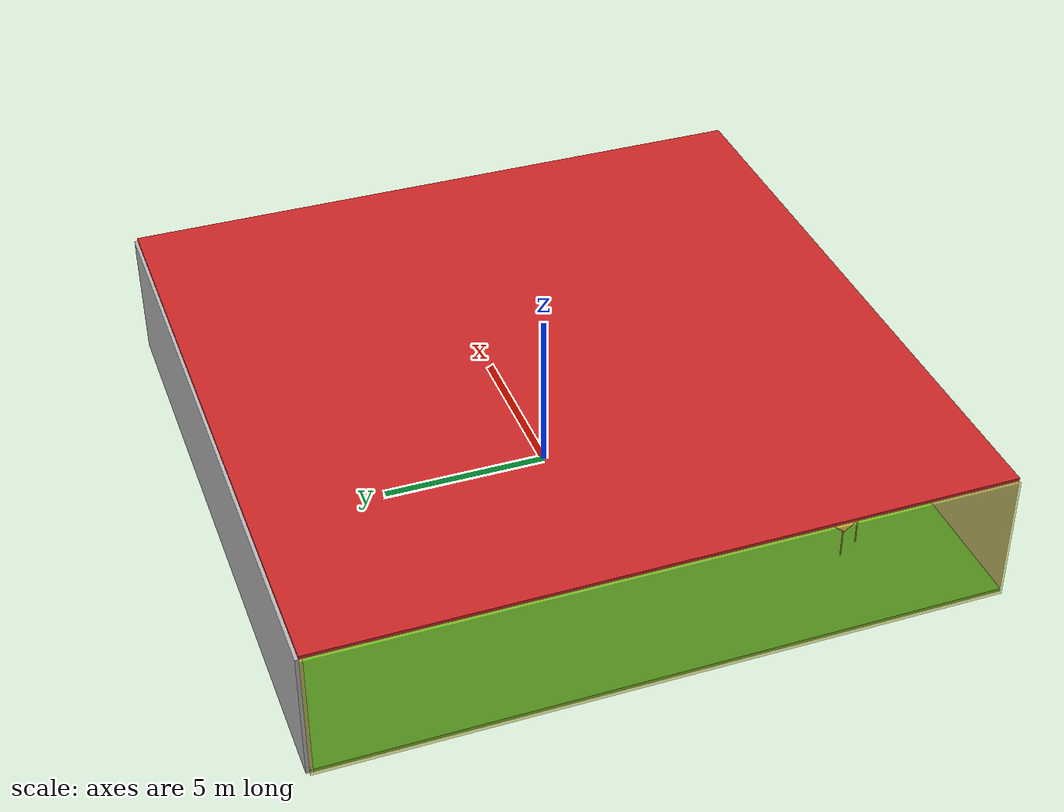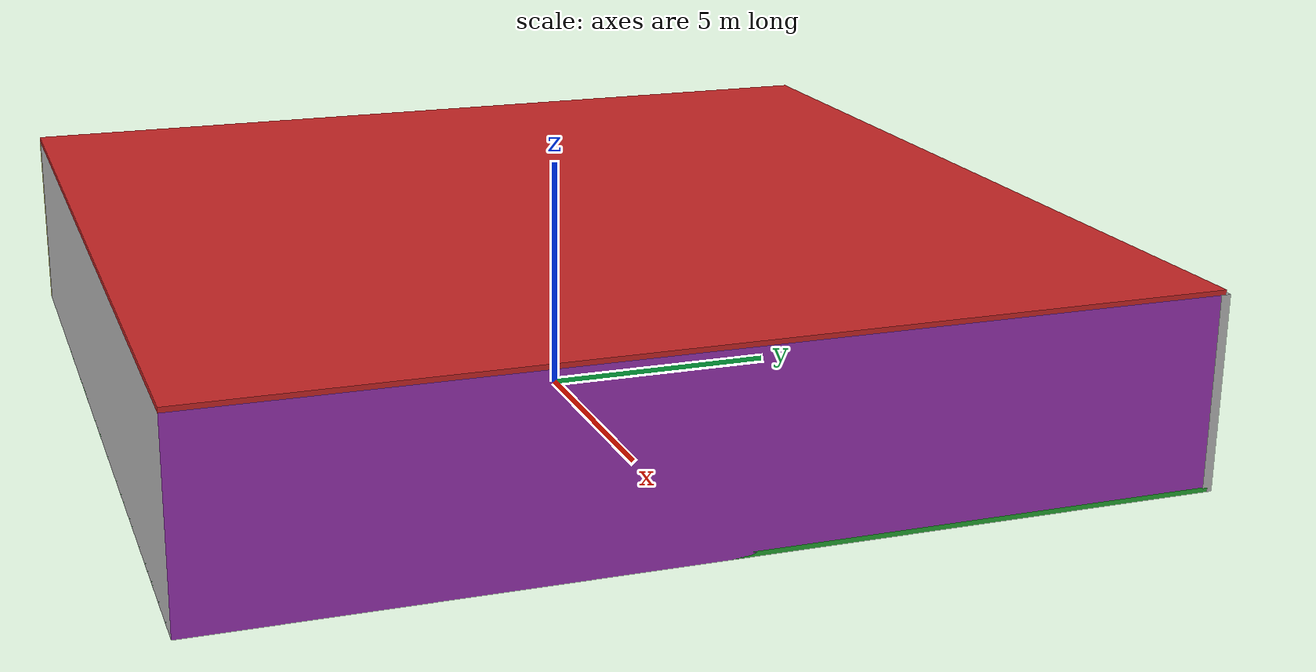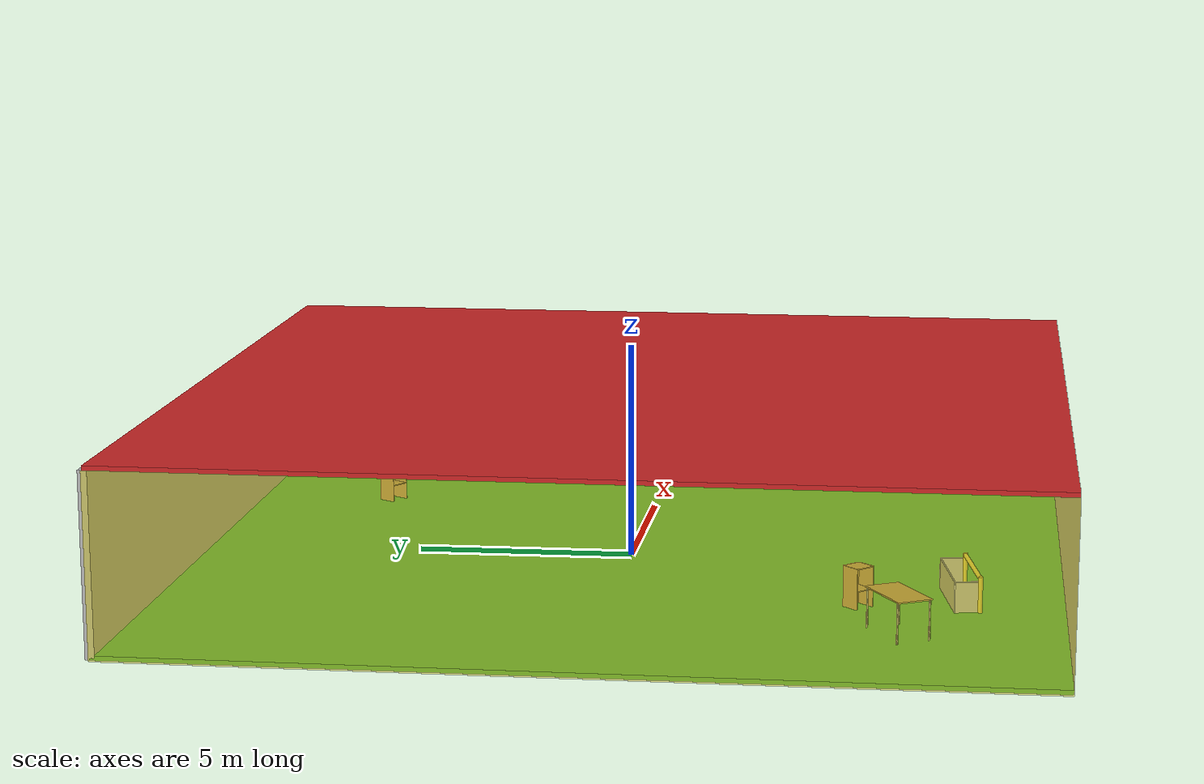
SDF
<sdf version="1.4">
 <world name="default">
  <physics type="ode">
   <max_step_size>0.001</max_step_size>
   <real_time_factor>1</real_time_factor>
   <real_time_update_rate>1000</real_time_update_rate>
   <gravity>0 0 -9.8</gravity>
  </physics>
  <scene><ambient>0.4 0.4 0.4 1</ambient><background>0.7 0.7 0.7 1</background><shadows>1</shadows></scene>
  <model name="Surrounding">
   <static>1</static>
   <link name="Ceiling">
    <collision name="Ceiling_Collision"><geometry><box><size>20 20 0.1</size></box></geometry></collision>
    <visual name="Ceiling_Visual">
     <geometry><box><size>20 20 0.1</size></box></geometry>
     <material>
      <script><uri>file://media/materials/scripts/gazebo.material</uri><name>Gazebo/RedGlow</name></script>
     </material>
    </visual>
    <pose>0 0 4.05 0 0 0</pose>
   </link>
   <link name="Wall_South">
    <collision name="Wall_South_Collision">
     <geometry><box><size>20 0 4</size></box></geometry>
     <pose>0 0 2 0 -0 0</pose>
    </collision>
    <visual name="Wall_South_Visual">
     <pose>0 0 2 0 -0 0</pose>
     <geometry><box><size>20 0 4</size></box></geometry>
     <material>
      <script><uri>file://media/materials/scripts/gazebo.material</uri><name>Gazebo/JointAnchor</name></script>
     </material>
    </visual>
    <velocity_decay><linear>0</linear><angular>0</angular></velocity_decay>
    <pose>0 -10 0 0 -0 0</pose>
   </link>
   <link name="Wall_East">
    <collision name="Wall_21_Collision">
     <geometry><box><size>20 0 4</size></box></geometry>
     <pose>0 0 2 0 -0 0</pose>
    </collision>
    <visual name="Wall_21_Visual">
     <pose>0 0 2 0 -0 0</pose>
     <geometry><box><size>20 0 4</size></box></geometry>
     <material>
      <script><uri>file://media/materials/scripts/gazebo.material</uri><name>Gazebo/PurpleGlow</name></script>
     </material>
    </visual>
    <velocity_decay><linear>0</linear><angular>0</angular></velocity_decay>
    <pose>10 0 0 0 -0 1.5708</pose>
   </link>
   <link name="Wall_North">
    <collision name="Wall_22_Collision">
     <geometry><box><size>20 0.2 4</size></box></geometry>
     <pose>0 0 2 0 -0 0</pose>
    </collision>
    <visual name="Wall_22_Visual">
     <pose>0 0 2 0 -0 0</pose>
     <geometry><box><size>20 0.2 4</size></box></geometry>
     <material>
      <script><uri>file://media/materials/scripts/gazebo.material</uri><name>Gazebo/JointAnchor</name></script>
     </material>
    </visual>
    <velocity_decay><linear>0</linear><angular>0</angular></velocity_decay>
    <pose>0 10 0 0 -0 0</pose>
   </link>
   <link name="Wall_West">
    <collision name="Wall_23_Collision">
     <geometry><box><size>20 0.2 4</size></box></geometry>
     <pose>0 0 2 0 -0 0</pose>
    </collision>
    <visual name="Wall_23_Visual">
     <pose>0 0 2 0 -0 0</pose>
     <geometry><box><size>20 0.2 4</size></box></geometry>
     <material>
      <script>
       <uri>file://media/materials/scripts/gazebo.material</uri>
       <name>Gazebo/YellowTransparent</name>
      </script>
     </material>
    </visual>
    <velocity_decay><linear>0</linear><angular>0</angular></velocity_decay>
    <pose>-10 0 0 0 0 -1.5708</pose>
   </link>
   <link name="Ground_link">
    <collision name="collision">
     <pose>0 0 .05 0 -0 0</pose>
     <geometry><box><size>20 20 0.1</size></box></geometry>
    </collision>
    <visual name="visual">
     <pose>0 0 .05 0 -0 0</pose>
     <geometry><box><size>20 20 0.1</size></box></geometry>
     <material>
      <script><uri>file://media/materials/scripts/gazebo.material</uri><name>Gazebo/GreenGlow</name></script>
     </material>
    </visual>
   </link>
   <static>1</static>
  </model>
  <spherical_coordinates>
   <surface_model>EARTH_WGS84</surface_model>
   <latitude_deg>0</latitude_deg>
   <longitude_deg>0</longitude_deg>
   <elevation>0</elevation>
   <heading_deg>0</heading_deg>
  </spherical_coordinates>
  <light name="lightball_0" type="diffuse">
   <diffuse>0.8 0.8 0.8 1</diffuse>
   <specular>0.2 0.2 0.2 1</specular>
   <attenuation>
    <range>100</range>
    <constant>0.7</constant>
    <linear>0.01</linear>
    <quadratic>0.001</quadratic>
   </attenuation>
   <direction>-0.5 0.1 -0.9</direction>
   <pose>4.12349644063 -1.48901346018 2.23227485151 0 0 0</pose>
  </light>
  <light name="lightball_1" type="diffuse">
   <diffuse>0.8 0.8 0.8 1</diffuse>
   <specular>0.2 0.2 0.2 1</specular>
   <attenuation>
    <range>100</range>
    <constant>0.7</constant>
    <linear>0.01</linear>
    <quadratic>0.001</quadratic>
   </attenuation>
   <direction>-0.5 0.1 -0.9</direction>
   <pose>-6.62746367294 -6.45915966545 1.43898137393 0 0 0</pose>
  </light>
  <light name="lightball_2" type="diffuse">
   <diffuse>0.8 0.8 0.8 1</diffuse>
   <specular>0.2 0.2 0.2 1</specular>
   <attenuation>
    <range>100</range>
    <constant>0.7</constant>
    <linear>0.01</linear>
    <quadratic>0.001</quadratic>
   </attenuation>
   <direction>-0.5 0.1 -0.9</direction>
   <pose>0.161327013228 7.50024412382 2.04816734582 0 0 0</pose>
  </light>
  <light name="lightball_3" type="diffuse">
   <diffuse>0.8 0.8 0.8 1</diffuse>
   <specular>0.2 0.2 0.2 1</specular>
   <attenuation>
    <range>100</range>
    <constant>0.7</constant>
    <linear>0.01</linear>
    <quadratic>0.001</quadratic>
   </attenuation>
   <direction>-0.5 0.1 -0.9</direction>
   <pose>7.91898670095 9.94495706882 2.38555528488 0 0 0</pose>
  </light>
  <light name="lightball_4" type="diffuse">
   <diffuse>0.8 0.8 0.8 1</diffuse>
   <specular>0.2 0.2 0.2 1</specular>
   <attenuation>
    <range>100</range>
    <constant>0.7</constant>
    <linear>0.01</linear>
    <quadratic>0.001</quadratic>
   </attenuation>
   <direction>-0.5 0.1 -0.9</direction>
   <pose>7.16957071382 -6.62484972307 2.33309986266 0 0 0</pose>
  </light>
  <light name="lightball_5" type="diffuse">
   <diffuse>0.8 0.8 0.8 1</diffuse>
   <specular>0.2 0.2 0.2 1</specular>
   <attenuation>
    <range>100</range>
    <constant>0.7</constant>
    <linear>0.01</linear>
    <quadratic>0.001</quadratic>
   </attenuation>
   <direction>-0.5 0.1 -0.9</direction>
   <pose>4.16780502559 -1.63360359235 3.29468611552 0 0 0</pose>
  </light>
  <light name="lightball_6" type="diffuse">
   <diffuse>0.8 0.8 0.8 1</diffuse>
   <specular>0.2 0.2 0.2 1</specular>
   <attenuation>
    <range>100</range>
    <constant>0.7</constant>
    <linear>0.01</linear>
    <quadratic>0.001</quadratic>
   </attenuation>
   <direction>-0.5 0.1 -0.9</direction>
   <pose>7.8806517412 2.59546342572 3.02993877703 0 0 0</pose>
  </light>
  <light name="lightball_7" type="diffuse">
   <diffuse>0.8 0.8 0.8 1</diffuse>
   <specular>0.2 0.2 0.2 1</specular>
   <attenuation>
    <range>100</range>
    <constant>0.7</constant>
    <linear>0.01</linear>
    <quadratic>0.001</quadratic>
   </attenuation>
   <direction>-0.5 0.1 -0.9</direction>
   <pose>-7.64982747978 -6.95393138253 0.677363832108 0 0 0</pose>
  </light>
  <light name="lightball_8" type="diffuse">
   <diffuse>0.8 0.8 0.8 1</diffuse>
   <specular>0.2 0.2 0.2 1</specular>
   <attenuation>
    <range>100</range>
    <constant>0.7</constant>
    <linear>0.01</linear>
    <quadratic>0.001</quadratic>
   </attenuation>
   <direction>-0.5 0.1 -0.9</direction>
   <pose>3.94828566372 5.74071381218 1.03258958059 0 0 0</pose>
  </light>
  <light name="lightball_9" type="diffuse">
   <diffuse>0.8 0.8 0.8 1</diffuse>
   <specular>0.2 0.2 0.2 1</specular>
   <attenuation>
    <range>100</range>
    <constant>0.7</constant>
    <linear>0.01</linear>
    <quadratic>0.001</quadratic>
   </attenuation>
   <direction>-0.5 0.1 -0.9</direction>
   <pose>-4.30580296194 4.1963812835 1.85672336613 0 0 0</pose>
  </light>
  <light name="lightball_10" type="diffuse">
   <diffuse>0.8 0.8 0.8 1</diffuse>
   <specular>0.2 0.2 0.2 1</specular>
   <attenuation>
    <range>100</range>
    <constant>0.7</constant>
    <linear>0.01</linear>
    <quadratic>0.001</quadratic>
   </attenuation>
   <direction>-0.5 0.1 -0.9</direction>
   <pose>-0.440942541238 -3.89350987336 3.30540826476 0 0 0</pose>
  </light>
  <light name="lightball_11" type="diffuse">
   <diffuse>0.8 0.8 0.8 1</diffuse>
   <specular>0.2 0.2 0.2 1</specular>
   <attenuation>
    <range>100</range>
    <constant>0.7</constant>
    <linear>0.01</linear>
    <quadratic>0.001</quadratic>
   </attenuation>
   <direction>-0.5 0.1 -0.9</direction>
   <pose>0.584099472452 -2.89066271989 0.904427277657 0 0 0</pose>
  </light>
  <light name="lightball_12" type="diffuse">
   <diffuse>0.8 0.8 0.8 1</diffuse>
   <specular>0.2 0.2 0.2 1</specular>
   <attenuation>
    <range>100</range>
    <constant>0.7</constant>
    <linear>0.01</linear>
    <quadratic>0.001</quadratic>
   </attenuation>
   <direction>-0.5 0.1 -0.9</direction>
   <pose>2.33468911833 -7.76990320904 2.61398428949 0 0 0</pose>
  </light>
  <light name="lightball_13" type="diffuse">
   <diffuse>0.8 0.8 0.8 1</diffuse>
   <specular>0.2 0.2 0.2 1</specular>
   <attenuation>
    <range>100</range>
    <constant>0.7</constant>
    <linear>0.01</linear>
    <quadratic>0.001</quadratic>
   </attenuation>
   <direction>-0.5 0.1 -0.9</direction>
   <pose>-7.83212623371 -2.31620104537 0.908917076956 0 0 0</pose>
  </light>
  <include><uri>model://table</uri><pose>-6.38381237124 -6.42517689538 0 0 0 0.516760575714</pose></include>
  <include>
   <uri>model://robocup_3Dsim_goal</uri>
   <pose>-3.4295094449 -7.96947484211 0 0 0 1.7337002659</pose>
  </include>
  <include><uri>model://cabinet</uri><pose>-4.28444737549 -5.49605689327 0 0 0 0.790046994938</pose></include>
  <include><uri>model://cabinet</uri><pose>4.58572471009 6.60546009519 0 0 0 1.00645723177</pose></include>
 </world>
</sdf>

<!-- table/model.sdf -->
<sdf version="1.5">
  <model name="table">
    <static>true</static>
    <link name="link">
      <collision name="surface">
        <pose>0 0 1.0 0 0 0</pose>
        <geometry>
          <box>
            <size>1.5 0.8 0.03</size>
          </box>
        </geometry>
        <surface>
          <friction>
            <ode>
              <mu>0.6</mu>
              <mu2>0.6</mu2>
            </ode>
          </friction>
        </surface>
      </collision>
      <visual name="visual1">
        <pose>0 0 1.0 0 0 0</pose>
        <geometry>
          <box>
            <size>1.5 0.8 0.03</size>
          </box>
        </geometry>
        <material>
          <script>
            <uri>model://media/materials/scripts/gazebo.material</uri>
            <name>Gazebo/Wood</name>
          </script>
        </material>
      </visual>
      <collision name="front_left_leg">
        <pose>0.68 0.38 0.5 0 0 0</pose>
        <geometry>
          <cylinder>
            <radius>0.02</radius>
            <length>1.0</length>
          </cylinder>
        </geometry>
      </collision>
      <visual name="front_left_leg">
        <pose>0.68 0.38 0.5 0 0 0</pose>
        <geometry>
          <cylinder>
            <radius>0.02</radius>
            <length>1.0</length>
          </cylinder>
        </geometry>
        <material>
          <script>
            <uri>model://media/materials/scripts/gazebo.material</uri>
            <name>Gazebo/Grey</name>
          </script>
        </material>
      </visual>
      <collision name="front_right_leg">
        <pose>0.68 -0.38 0.5 0 0 0</pose>
        <geometry>
          <cylinder>
            <radius>0.02</radius>
            <length>1.0</length>
          </cylinder>
        </geometry>
      </collision>
      <visual name="front_right_leg">
        <pose>0.68 -0.38 0.5 0 0 0</pose>
        <geometry>
          <cylinder>
            <radius>0.02</radius>
            <length>1.0</length>
          </cylinder>
        </geometry>
        <material>
          <script>
            <uri>model://media/materials/scripts/gazebo.material</uri>
            <name>Gazebo/Grey</name>
          </script>
        </material>
      </visual>
      <collision name="back_right_leg">
        <pose>-0.68 -0.38 0.5 0 0 0</pose>
        <geometry>
          <cylinder>
            <radius>0.02</radius>
            <length>1.0</length>
          </cylinder>
        </geometry>
      </collision>
      <visual name="back_right_leg">
        <pose>-0.68 -0.38 0.5 0 0 0</pose>
        <geometry>
          <cylinder>
            <radius>0.02</radius>
            <length>1.0</length>
          </cylinder>
        </geometry>
        <material>
          <script>
            <uri>model://media/materials/scripts/gazebo.material</uri>
            <name>Gazebo/Grey</name>
          </script>
        </material>
      </visual>
      <collision name="back_left_leg">
        <pose>-0.68 0.38 0.5 0 0 0</pose>
        <geometry>
          <cylinder>
            <radius>0.02</radius>
            <length>1.0</length>
          </cylinder>
        </geometry>
      </collision>
      <visual name="back_left_leg">
        <pose>-0.68 0.38 0.5 0 0 0</pose>
        <geometry>
          <cylinder>
            <radius>0.02</radius>
            <length>1.0</length>
          </cylinder>
        </geometry>
        <material>
          <script>
            <uri>model://media/materials/scripts/gazebo.material</uri>
            <name>Gazebo/Grey</name>
          </script>
        </material>
      </visual>
    </link>
  </model>
</sdf>

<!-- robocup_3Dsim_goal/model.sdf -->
<sdf version="1.5">
  <model name="robocup_3d_goal">
    <static>true</static>
    <link name="left_post">
      <pose>0 1.05 0.45 0 0 0</pose>
      <collision name="collision">
        <geometry>
          <cylinder>
            <radius>0.05</radius>
            <length>0.9</length>
          </cylinder>
        </geometry>
      </collision>
      <visual name="visual">
        <geometry>
          <cylinder>
            <radius>0.05</radius>
            <length>0.9</length>
          </cylinder>
        </geometry>
        <material>
          <script>
            <uri>file://media/materials/scripts/gazebo.material</uri>
            <name>Gazebo/ZincYellow</name>
          </script>
        </material>
      </visual>
    </link>
    <link name="left_support_horiz_lower">
      <pose>0.30 1.05 0.01 0 0 0</pose>
      <collision name="collision">
        <geometry>
          <box>
            <size>0.50 0.02 0.02</size>
          </box>
        </geometry>
      </collision>
      <visual name="visual">
        <geometry>
          <box>
            <size>0.50 0.02 0.02</size>
          </box>
        </geometry>
        <material>
          <script>
            <uri>file://media/materials/scripts/gazebo.material</uri>
            <name>Gazebo/White</name>
          </script>
        </material>
      </visual>
    </link>
    <link name="left_support_horiz_upper">
      <pose>0.30 1.05 0.79 0 0 0</pose>
      <collision name="collision">
        <geometry>
          <box>
            <size>0.50 0.02 0.02</size>
          </box>
        </geometry>
      </collision>
      <visual name="visual">
        <geometry>
          <box>
            <size>0.50 0.02 0.02</size>
          </box>
        </geometry>
        <material>
          <script>
            <uri>file://media/materials/scripts/gazebo.material</uri>
            <name>Gazebo/White</name>
          </script>
        </material>
      </visual>
    </link>
    <link name="left_support_vertical">
      <pose>0.56 1.05 0.4 0 1.5708 0</pose>
      <collision name="collision">
        <geometry>
          <box>
            <size>0.80 0.02 0.02</size>
          </box>
        </geometry>
      </collision>
      <visual name="visual">
        <geometry>
          <box>
            <size>0.80 0.02 0.02</size>
          </box>
        </geometry>
        <material>
          <script>
            <uri>file://media/materials/scripts/gazebo.material</uri>
            <name>Gazebo/White</name>
          </script>
        </material>
      </visual>
    </link>
    <link name="right_support_horiz_lower">
      <pose>0.30 -1.05 0.01 0 0 0</pose>
      <collision name="collision">
        <geometry>
          <box>
            <size>0.50 0.02 0.02</size>
          </box>
        </geometry>
      </collision>
      <visual name="visual">
        <geometry>
          <box>
            <size>0.50 0.02 0.02</size>
          </box>
        </geometry>
        <material>
          <script>
            <uri>file://media/materials/scripts/gazebo.material</uri>
            <name>Gazebo/White</name>
          </script>
        </material>
      </visual>
    </link>
    <link name="right_support_horiz_upper">
      <pose>0.30 -1.05 0.79 0 0 0</pose>
      <collision name="collision">
        <geometry>
          <box>
            <size>0.50 0.02 0.02</size>
          </box>
        </geometry>
      </collision>
      <visual name="visual">
        <geometry>
          <box>
            <size>0.50 0.02 0.02</size>
          </box>
        </geometry>
        <material>
          <script>
            <uri>file://media/materials/scripts/gazebo.material</uri>
            <name>Gazebo/White</name>
          </script>
        </material>
      </visual>
    </link>
    <link name="right_support_vertical">
      <pose>0.56 -1.05 0.4 0 1.5708 0</pose>
      <collision name="collision">
        <geometry>
          <box>
            <size>0.80 0.02 0.02</size>
          </box>
        </geometry>
      </collision>
      <visual name="visual">
        <geometry>
          <box>
            <size>0.80 0.02 0.02</size>
          </box>
        </geometry>
        <material>
          <script>
            <uri>file://media/materials/scripts/gazebo.material</uri>
            <name>Gazebo/White</name>
          </script>
        </material>
      </visual>
    </link>
    <link name="center_support_horiz_lower">
      <pose>0.56 0 0.01 0 1.5708 0</pose>
      <collision name="collision">
        <geometry>
          <box>
            <size>0.02 2.08 0.02</size>
          </box>
        </geometry>
      </collision>
      <visual name="visual">
        <geometry>
          <box>
            <size>0.02 2.08 0.02</size>
          </box>
        </geometry>
        <material>
          <script>
            <uri>file://media/materials/scripts/gazebo.material</uri>
            <name>Gazebo/White</name>
          </script>
        </material>
      </visual>
    </link>
    <link name="center_support_horiz_upper">
      <pose>0.56 0 0.79 0 1.5708 0</pose>
      <collision name="collision">
        <geometry>
          <box>
            <size>0.02 2.08 0.02</size>
          </box>
        </geometry>
      </collision>
      <visual name="visual">
        <geometry>
          <box>
            <size>0.02 2.08 0.02</size>
          </box>
        </geometry>
        <material>
          <script>
            <uri>file://media/materials/scripts/gazebo.material</uri>
            <name>Gazebo/White</name>
          </script>
        </material>
      </visual>
    </link>
    <link name="right_post">
      <pose>0 -1.05 0.45 0 0 0</pose>
      <collision name="collision">
        <geometry>
          <cylinder>
            <radius>0.05</radius>
            <length>0.9</length>
          </cylinder>
        </geometry>
      </collision>
      <visual name="visual">
        <geometry>
          <cylinder>
            <radius>0.05</radius>
            <length>0.9</length>
          </cylinder>
        </geometry>
        <material>
          <script>
            <uri>file://media/materials/scripts/gazebo.material</uri>
            <name>Gazebo/ZincYellow</name>
          </script>
        </material>
      </visual>
    </link>
    <link name="crossbar">
      <pose>0 0 0.85 1.57 1.57 0</pose>
      <collision name="collision">
        <geometry>
          <cylinder>
            <radius>0.05</radius>
            <length>2.0</length>
          </cylinder>
        </geometry>
      </collision>
      <visual name="visual">
        <geometry>
          <cylinder>
            <radius>0.05</radius>
            <length>2.0</length>
          </cylinder>
        </geometry>
        <material>
          <script>
            <uri>file://media/materials/scripts/gazebo.material</uri>
            <name>Gazebo/ZincYellow</name>
          </script>
        </material>
      </visual>
    </link>
    <link name="center_net">
      <pose>0.56 0 0.40 0 0 0</pose>
      <collision name="collision">
        <geometry>
          <box>
            <size>0.01 2.1 0.80</size>
          </box>
        </geometry>
      </collision>
      <visual name="visual">
        <geometry>
          <box>
            <size>0.01 2.1 0.80</size>
          </box>
        </geometry>
        <material>
          <script>
            <uri>model://../model_source/models/robocup09_spl_field/materials/scripts/</uri>
            <uri>model://../model_source/models/robocup09_spl_field/materials/textures/</uri>
            <name>RoboCup/Net</name>
          </script>
        </material>
      </visual>
    </link>
    <link name="left_net">
      <pose>0.30 1.05 0.40 0 0 0</pose>
      <collision name="collision">
        <geometry>
          <box>
            <size>0.50 0.01 0.76</size>
          </box>
        </geometry>
      </collision>
      <visual name="visual">
        <geometry>
          <box>
            <size>0.50 0.01 0.76</size>
          </box>
        </geometry>
        <material>
          <script>
            <uri>model://../model_source/models/robocup09_spl_field/materials/scripts/</uri>
            <uri>model://../model_source/models/robocup09_spl_field/materials/textures/</uri>
            <name>RoboCup/Net</name>
          </script>
        </material>
      </visual>
    </link>
    <link name="right_net">
      <pose>0.30 -1.05 0.40 0 0 0</pose>
      <collision name="collision">
        <geometry>
          <box>
            <size>0.50 0.01 0.76</size>
          </box>
        </geometry>
      </collision>
      <visual name="visual">
        <geometry>
          <box>
            <size>0.50 0.01 0.76</size>
          </box>
        </geometry>
        <material>
          <script>
            <uri>model://../model_source/models/robocup09_spl_field/materials/scripts/</uri>
            <uri>model://../model_source/models/robocup09_spl_field/materials/textures/</uri>
            <name>RoboCup/Net</name>
          </script>
        </material>
      </visual>
    </link>
  </model>
</sdf>

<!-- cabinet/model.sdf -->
<sdf version="1.5">
  <model name="cabinet">
    <static>true</static>
    <link name="cabinet_bottom_plate">
      <inertial>
        <pose>0 0 -1 0 0 0</pose>
        <inertia>
          <ixx>2.050000</ixx>
          <ixy>0</ixy>
          <ixz>0</ixz>
          <iyy>2.050000</iyy>
          <iyz>0</iyz>
          <izz>2.050000</izz>
        </inertia>
        <mass>25.000000</mass>
      </inertial>
      <collision name="cabinet_bottom_plate_geom">
        <pose>0 0 0.010000 0 0 0</pose>
        <geometry>
          <box>
            <size>0.450000 0.450000 0.020000</size>
          </box>
        </geometry>
      </collision>
      <visual name="cabinet_bottom_plate_geom_visual">
        <pose>0 0 0.010000 0 0 0</pose>
        <geometry>
          <box>
            <size>0.450000 0.450000 0.020000</size>
          </box>
        </geometry>
        <material>
          <script>
            <uri>model://media/materials/scripts/gazebo.material</uri>
            <name>Gazebo/Wood</name>
          </script>
        </material>
      </visual>
      <collision name="cabinet_bottom_plate_geom_cabinet_back_plate">
        <pose>0.235000 0 0.510000 0 0 0</pose>
        <geometry>
          <box>
            <size>0.020000 0.450000 1.020000</size>
          </box>
        </geometry>
      </collision>
      <visual name="cabinet_bottom_plate_geom_cabinet_back_plate_visual">
        <pose>0.235000 0 0.510000 0 0 0</pose>
        <geometry>
          <box>
            <size>0.020000 0.450000 1.020000</size>
          </box>
        </geometry>
        <material>
          <script>
            <uri>model://media/materials/scripts/gazebo.material</uri>
            <name>Gazebo/Wood</name>
          </script>
        </material>
      </visual>
      <collision name="cabinet_bottom_plate_geom_cabinet_left_plate">
        <pose>0 0.235000 0.510000 0 0 0</pose>
        <geometry>
          <box>
            <size>0.450000 0.020000 1.020000</size>
          </box>
        </geometry>
      </collision>
      <visual name="cabinet_bottom_plate_geom_cabinet_left_plate_visual">
        <pose>0 0.235000 0.510000 0 0 0</pose>
        <geometry>
          <box>
            <size>0.450000 0.020000 1.020000</size>
          </box>
        </geometry>
        <material>
          <script>
            <uri>model://media/materials/scripts/gazebo.material</uri>
            <name>Gazebo/Wood</name>
          </script>
        </material>
      </visual>
      <collision name="cabinet_bottom_plate_geom_cabinet_middle_plate">
        <pose>0 0 0.510000 0 0 0</pose>
        <geometry>
          <box>
            <size>0.450000 0.450000 0.020000</size>
          </box>
        </geometry>
      </collision>
      <visual name="cabinet_bottom_plate_geom_cabinet_middle_plate_visual">
        <pose>0 0 0.510000 0 0 0</pose>
        <geometry>
          <box>
            <size>0.450000 0.450000 0.020000</size>
          </box>
        </geometry>
        <material>
          <script>
            <uri>model://media/materials/scripts/gazebo.material</uri>
            <name>Gazebo/Wood</name>
          </script>
        </material>
      </visual>
      <collision name="cabinet_bottom_plate_geom_cabinet_right_plate">
        <pose>0 -0.235000 0.510000 0 0 0</pose>
        <geometry>
          <box>
            <size>0.450000 0.020000 1.020000</size>
          </box>
        </geometry>
      </collision>
      <visual name="cabinet_bottom_plate_geom_cabinet_right_plate_visual">
        <pose>0 -0.235000 0.510000 0 0 0</pose>
        <geometry>
          <box>
            <size>0.450000 0.020000 1.020000</size>
          </box>
        </geometry>
        <material>
          <script>
            <uri>model://media/materials/scripts/gazebo.material</uri>
            <name>Gazebo/Wood</name>
          </script>
        </material>
      </visual>
      <collision name="cabinet_bottom_plate_geom_cabinet_top_plate">
        <pose>0 0 1.010000 0 0 0</pose>
        <geometry>
          <box>
            <size>0.450000 0.450000 0.020000</size>
          </box>
        </geometry>
      </collision>
      <visual name="cabinet_bottom_plate_geom_cabinet_top_plate_visual">
        <pose>0 0 1.010000 0 0 0</pose>
        <geometry>
          <box>
            <size>0.450000 0.450000 0.020000</size>
          </box>
        </geometry>
        <material>
          <script>
            <uri>model://media/materials/scripts/gazebo.material</uri>
            <name>Gazebo/Wood</name>
          </script>
        </material>
      </visual>
    </link>
  </model>
</sdf>
